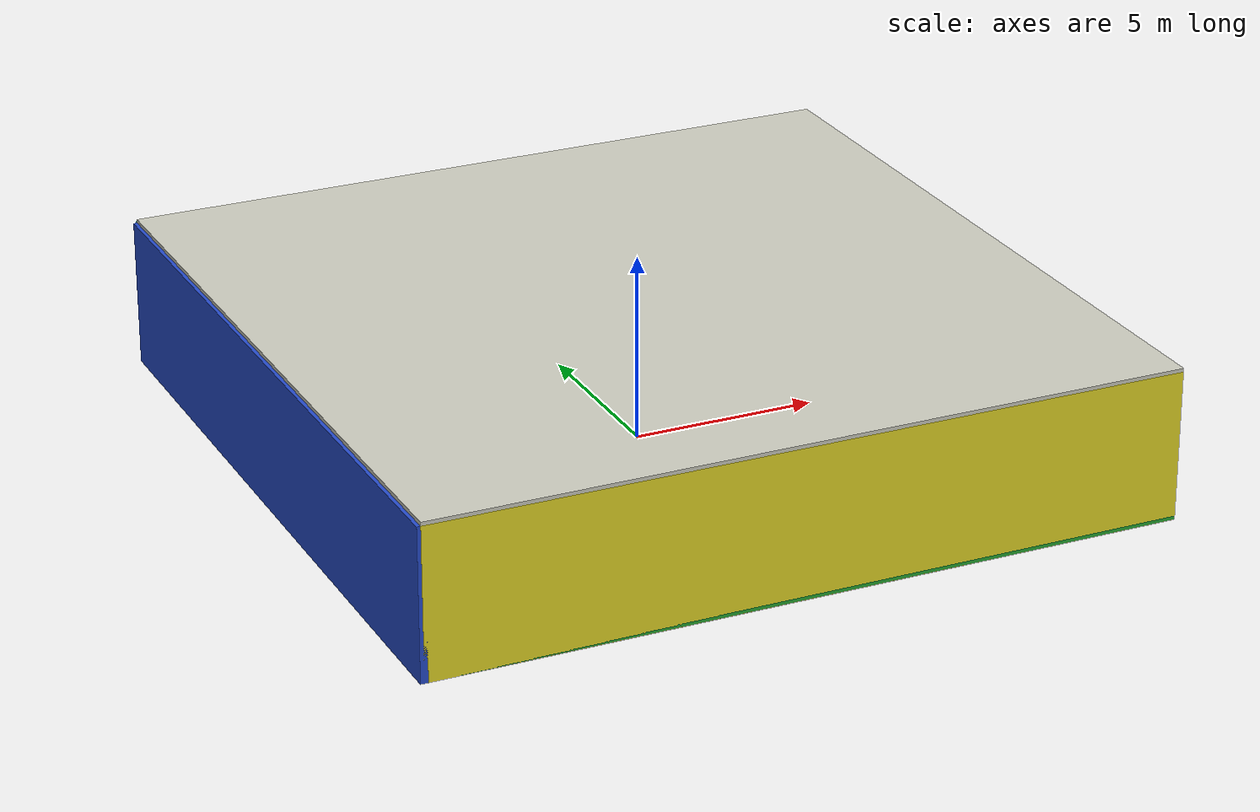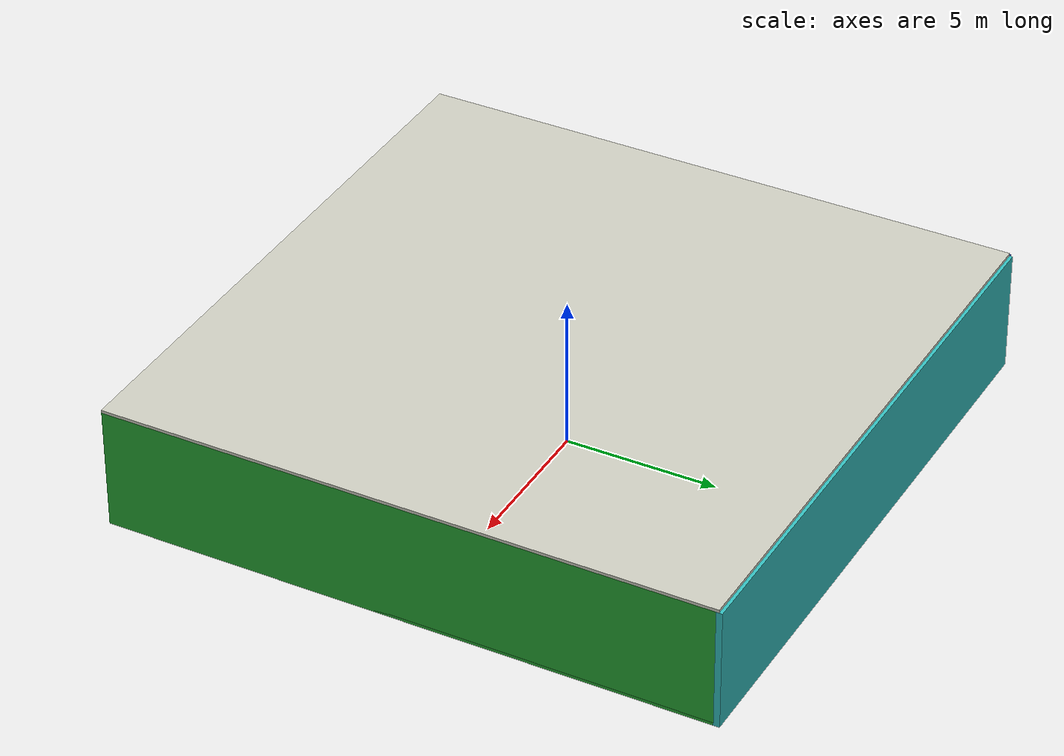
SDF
<sdf version="1.4">
 <world name="default">
  <physics type="ode">
   <max_step_size>0.001</max_step_size>
   <real_time_factor>1</real_time_factor>
   <real_time_update_rate>1000</real_time_update_rate>
   <gravity>0 0 -9.8</gravity>
  </physics>
  <scene><ambient>0.4 0.4 0.4 1</ambient><background>0.7 0.7 0.7 1</background><shadows>1</shadows></scene>
  <model name="Surrounding">
   <static>1</static>
   <link name="Ceiling">
    <collision name="Ceiling_Collision"><geometry><box><size>20 20 0.1</size></box></geometry></collision>
    <visual name="Ceiling_Visual">
     <geometry><box><size>20 20 0.1</size></box></geometry>
     <material>
      <script><uri>file://media/materials/scripts/gazebo.material</uri><name>Gazebo/PaintedWall</name></script>
     </material>
    </visual>
    <pose>0 0 4.05 0 0 0</pose>
   </link>
   <link name="Wall_South">
    <collision name="Wall_South_Collision">
     <geometry><box><size>20 0 4</size></box></geometry>
     <pose>0 0 2 0 -0 0</pose>
    </collision>
    <visual name="Wall_South_Visual">
     <pose>0 0 2 0 -0 0</pose>
     <geometry><box><size>20 0 4</size></box></geometry>
     <material>
      <script><uri>file://media/materials/scripts/gazebo.material</uri><name>Gazebo/YellowGlow</name></script>
     </material>
    </visual>
    <velocity_decay><linear>0</linear><angular>0</angular></velocity_decay>
    <pose>0 -10 0 0 -0 0</pose>
   </link>
   <link name="Wall_East">
    <collision name="Wall_21_Collision">
     <geometry><box><size>20 0 4</size></box></geometry>
     <pose>0 0 2 0 -0 0</pose>
    </collision>
    <visual name="Wall_21_Visual">
     <pose>0 0 2 0 -0 0</pose>
     <geometry><box><size>20 0 4</size></box></geometry>
     <material>
      <script><uri>file://media/materials/scripts/gazebo.material</uri><name>Gazebo/GreenGlow</name></script>
     </material>
    </visual>
    <velocity_decay><linear>0</linear><angular>0</angular></velocity_decay>
    <pose>10 0 0 0 -0 1.5708</pose>
   </link>
   <link name="Wall_North">
    <collision name="Wall_22_Collision">
     <geometry><box><size>20 0.2 4</size></box></geometry>
     <pose>0 0 2 0 -0 0</pose>
    </collision>
    <visual name="Wall_22_Visual">
     <pose>0 0 2 0 -0 0</pose>
     <geometry><box><size>20 0.2 4</size></box></geometry>
     <material>
      <script><uri>file://media/materials/scripts/gazebo.material</uri><name>Gazebo/TurquoiseGlow</name></script>
     </material>
    </visual>
    <velocity_decay><linear>0</linear><angular>0</angular></velocity_decay>
    <pose>0 10 0 0 -0 0</pose>
   </link>
   <link name="Wall_West">
    <collision name="Wall_23_Collision">
     <geometry><box><size>20 0.2 4</size></box></geometry>
     <pose>0 0 2 0 -0 0</pose>
    </collision>
    <visual name="Wall_23_Visual">
     <pose>0 0 2 0 -0 0</pose>
     <geometry><box><size>20 0.2 4</size></box></geometry>
     <material>
      <script><uri>file://media/materials/scripts/gazebo.material</uri><name>Gazebo/BlueLaser</name></script>
     </material>
    </visual>
    <velocity_decay><linear>0</linear><angular>0</angular></velocity_decay>
    <pose>-10 0 0 0 0 -1.5708</pose>
   </link>
   <link name="Ground_link">
    <collision name="collision">
     <pose>0 0 .05 0 -0 0</pose>
     <geometry><box><size>20 20 0.1</size></box></geometry>
    </collision>
    <visual name="visual">
     <pose>0 0 .05 0 -0 0</pose>
     <geometry><box><size>20 20 0.1</size></box></geometry>
     <material>
      <script><uri>file://media/materials/scripts/gazebo.material</uri><name>Gazebo/Green</name></script>
     </material>
    </visual>
   </link>
   <static>1</static>
  </model>
  <spherical_coordinates>
   <surface_model>EARTH_WGS84</surface_model>
   <latitude_deg>0</latitude_deg>
   <longitude_deg>0</longitude_deg>
   <elevation>0</elevation>
   <heading_deg>0</heading_deg>
  </spherical_coordinates>
  <light name="lightball_0" type="diffuse">
   <diffuse>0.8 0.8 0.8 1</diffuse>
   <specular>0.2 0.2 0.2 1</specular>
   <attenuation>
    <range>100</range>
    <constant>0.7</constant>
    <linear>0.01</linear>
    <quadratic>0.001</quadratic>
   </attenuation>
   <direction>-0.5 0.1 -0.9</direction>
   <pose>7.61521441349 -1.50731483434 1.31707577921 0 0 0</pose>
  </light>
  <light name="lightball_1" type="diffuse">
   <diffuse>0.8 0.8 0.8 1</diffuse>
   <specular>0.2 0.2 0.2 1</specular>
   <attenuation>
    <range>100</range>
    <constant>0.7</constant>
    <linear>0.01</linear>
    <quadratic>0.001</quadratic>
   </attenuation>
   <direction>-0.5 0.1 -0.9</direction>
   <pose>7.48524074796 9.54142749818 2.26071376715 0 0 0</pose>
  </light>
  <include>
   <uri>model://construction_cone</uri>
   <pose>-8.42135567805 -2.48919575154 0 0 0 0.106146043816</pose>
  </include>
  <include><uri>model://cabinet</uri><pose>-6.92860230114 0.318710331831 0 0 0 0.701374690365</pose></include>
  <include><uri>model://table</uri><pose>-5.53245003407 4.05307570427 0 0 0 1.24812040493</pose></include>
  <include>
   <uri>model://construction_cone</uri>
   <pose>-5.11414654649 8.57335593856 0 0 0 0.912598629759</pose>
  </include>
  <include><uri>model://table</uri><pose>-0.80526457414 -2.67962904856 0 0 0 1.61782452374</pose></include>
  <include>
   <uri>model://textured_shapes</uri>
   <pose>0.420004830101 2.33084214018 0 0 0 1.37016587741</pose>
  </include>
  <include>
   <uri>model://construction_cone</uri>
   <pose>6.79376290599 7.00008246866 0 0 0 2.61877853556</pose>
  </include>
 </world>
</sdf>

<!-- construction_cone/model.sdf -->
<sdf version="1.5">
  <model name="Construction Cone">
    <link name="link">
      <collision name="collision">
        <geometry>
          <mesh>
            <scale>10 10 10</scale>
            <uri>file://isr-testbed/construction_cone/meshes/construction_cone.dae</uri>
          </mesh>
        </geometry>
      </collision>
      <visual name="visual">
        <geometry>
          <mesh>
            <scale>10 10 10</scale>
            <uri>file://isr-testbed/construction_cone/meshes/construction_cone.dae</uri>
          </mesh>
        </geometry>
      </visual>
    </link>
  </model>
</sdf>

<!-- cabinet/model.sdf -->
<sdf version="1.5">
  <model name="cabinet">
    <static>true</static>
    <link name="cabinet_bottom_plate">
      <inertial>
        <pose>0 0 -1 0 0 0</pose>
        <inertia>
          <ixx>2.050000</ixx>
          <ixy>0</ixy>
          <ixz>0</ixz>
          <iyy>2.050000</iyy>
          <iyz>0</iyz>
          <izz>2.050000</izz>
        </inertia>
        <mass>25.000000</mass>
      </inertial>
      <collision name="cabinet_bottom_plate_geom">
        <pose>0 0 0.010000 0 0 0</pose>
        <geometry>
          <box>
            <size>0.450000 0.450000 0.020000</size>
          </box>
        </geometry>
      </collision>
      <visual name="cabinet_bottom_plate_geom_visual">
        <pose>0 0 0.010000 0 0 0</pose>
        <geometry>
          <box>
            <size>0.450000 0.450000 0.020000</size>
          </box>
        </geometry>
        <material>
          <script>
            <uri>model://media/materials/scripts/gazebo.material</uri>
            <name>Gazebo/Wood</name>
          </script>
        </material>
      </visual>
      <collision name="cabinet_bottom_plate_geom_cabinet_back_plate">
        <pose>0.235000 0 0.510000 0 0 0</pose>
        <geometry>
          <box>
            <size>0.020000 0.450000 1.020000</size>
          </box>
        </geometry>
      </collision>
      <visual name="cabinet_bottom_plate_geom_cabinet_back_plate_visual">
        <pose>0.235000 0 0.510000 0 0 0</pose>
        <geometry>
          <box>
            <size>0.020000 0.450000 1.020000</size>
          </box>
        </geometry>
        <material>
          <script>
            <uri>model://media/materials/scripts/gazebo.material</uri>
            <name>Gazebo/Wood</name>
          </script>
        </material>
      </visual>
      <collision name="cabinet_bottom_plate_geom_cabinet_left_plate">
        <pose>0 0.235000 0.510000 0 0 0</pose>
        <geometry>
          <box>
            <size>0.450000 0.020000 1.020000</size>
          </box>
        </geometry>
      </collision>
      <visual name="cabinet_bottom_plate_geom_cabinet_left_plate_visual">
        <pose>0 0.235000 0.510000 0 0 0</pose>
        <geometry>
          <box>
            <size>0.450000 0.020000 1.020000</size>
          </box>
        </geometry>
        <material>
          <script>
            <uri>model://media/materials/scripts/gazebo.material</uri>
            <name>Gazebo/Wood</name>
          </script>
        </material>
      </visual>
      <collision name="cabinet_bottom_plate_geom_cabinet_middle_plate">
        <pose>0 0 0.510000 0 0 0</pose>
        <geometry>
          <box>
            <size>0.450000 0.450000 0.020000</size>
          </box>
        </geometry>
      </collision>
      <visual name="cabinet_bottom_plate_geom_cabinet_middle_plate_visual">
        <pose>0 0 0.510000 0 0 0</pose>
        <geometry>
          <box>
            <size>0.450000 0.450000 0.020000</size>
          </box>
        </geometry>
        <material>
          <script>
            <uri>model://media/materials/scripts/gazebo.material</uri>
            <name>Gazebo/Wood</name>
          </script>
        </material>
      </visual>
      <collision name="cabinet_bottom_plate_geom_cabinet_right_plate">
        <pose>0 -0.235000 0.510000 0 0 0</pose>
        <geometry>
          <box>
            <size>0.450000 0.020000 1.020000</size>
          </box>
        </geometry>
      </collision>
      <visual name="cabinet_bottom_plate_geom_cabinet_right_plate_visual">
        <pose>0 -0.235000 0.510000 0 0 0</pose>
        <geometry>
          <box>
            <size>0.450000 0.020000 1.020000</size>
          </box>
        </geometry>
        <material>
          <script>
            <uri>model://media/materials/scripts/gazebo.material</uri>
            <name>Gazebo/Wood</name>
          </script>
        </material>
      </visual>
      <collision name="cabinet_bottom_plate_geom_cabinet_top_plate">
        <pose>0 0 1.010000 0 0 0</pose>
        <geometry>
          <box>
            <size>0.450000 0.450000 0.020000</size>
          </box>
        </geometry>
      </collision>
      <visual name="cabinet_bottom_plate_geom_cabinet_top_plate_visual">
        <pose>0 0 1.010000 0 0 0</pose>
        <geometry>
          <box>
            <size>0.450000 0.450000 0.020000</size>
          </box>
        </geometry>
        <material>
          <script>
            <uri>model://media/materials/scripts/gazebo.material</uri>
            <name>Gazebo/Wood</name>
          </script>
        </material>
      </visual>
    </link>
  </model>
</sdf>

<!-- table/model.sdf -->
<sdf version="1.5">
  <model name="table">
    <static>true</static>
    <link name="link">
      <collision name="surface">
        <pose>0 0 1.0 0 0 0</pose>
        <geometry>
          <box>
            <size>1.5 0.8 0.03</size>
          </box>
        </geometry>
        <surface>
          <friction>
            <ode>
              <mu>0.6</mu>
              <mu2>0.6</mu2>
            </ode>
          </friction>
        </surface>
      </collision>
      <visual name="visual1">
        <pose>0 0 1.0 0 0 0</pose>
        <geometry>
          <box>
            <size>1.5 0.8 0.03</size>
          </box>
        </geometry>
        <material>
          <script>
            <uri>model://media/materials/scripts/gazebo.material</uri>
            <name>Gazebo/Wood</name>
          </script>
        </material>
      </visual>
      <collision name="front_left_leg">
        <pose>0.68 0.38 0.5 0 0 0</pose>
        <geometry>
          <cylinder>
            <radius>0.02</radius>
            <length>1.0</length>
          </cylinder>
        </geometry>
      </collision>
      <visual name="front_left_leg">
        <pose>0.68 0.38 0.5 0 0 0</pose>
        <geometry>
          <cylinder>
            <radius>0.02</radius>
            <length>1.0</length>
          </cylinder>
        </geometry>
        <material>
          <script>
            <uri>model://media/materials/scripts/gazebo.material</uri>
            <name>Gazebo/Grey</name>
          </script>
        </material>
      </visual>
      <collision name="front_right_leg">
        <pose>0.68 -0.38 0.5 0 0 0</pose>
        <geometry>
          <cylinder>
            <radius>0.02</radius>
            <length>1.0</length>
          </cylinder>
        </geometry>
      </collision>
      <visual name="front_right_leg">
        <pose>0.68 -0.38 0.5 0 0 0</pose>
        <geometry>
          <cylinder>
            <radius>0.02</radius>
            <length>1.0</length>
          </cylinder>
        </geometry>
        <material>
          <script>
            <uri>model://media/materials/scripts/gazebo.material</uri>
            <name>Gazebo/Grey</name>
          </script>
        </material>
      </visual>
      <collision name="back_right_leg">
        <pose>-0.68 -0.38 0.5 0 0 0</pose>
        <geometry>
          <cylinder>
            <radius>0.02</radius>
            <length>1.0</length>
          </cylinder>
        </geometry>
      </collision>
      <visual name="back_right_leg">
        <pose>-0.68 -0.38 0.5 0 0 0</pose>
        <geometry>
          <cylinder>
            <radius>0.02</radius>
            <length>1.0</length>
          </cylinder>
        </geometry>
        <material>
          <script>
            <uri>model://media/materials/scripts/gazebo.material</uri>
            <name>Gazebo/Grey</name>
          </script>
        </material>
      </visual>
      <collision name="back_left_leg">
        <pose>-0.68 0.38 0.5 0 0 0</pose>
        <geometry>
          <cylinder>
            <radius>0.02</radius>
            <length>1.0</length>
          </cylinder>
        </geometry>
      </collision>
      <visual name="back_left_leg">
        <pose>-0.68 0.38 0.5 0 0 0</pose>
        <geometry>
          <cylinder>
            <radius>0.02</radius>
            <length>1.0</length>
          </cylinder>
        </geometry>
        <material>
          <script>
            <uri>model://media/materials/scripts/gazebo.material</uri>
            <name>Gazebo/Grey</name>
          </script>
        </material>
      </visual>
    </link>
  </model>
</sdf>

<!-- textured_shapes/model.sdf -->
<sdf version="1.6">
  <model name="textured_shapes">
    <pose>0 0 0.5 0 0 0</pose>
    <link name="box">
      <pose>0 -1.5 0 0 0 0</pose>
      <collision name="collision">
        <geometry>
          <box>
            <size>1 1 1</size>
          </box>
        </geometry>
      </collision>
      <visual name="visual">
        <geometry>
          <box>
            <size>1 1 1</size>
          </box>
        </geometry>
        <material>
          <script>
            <uri>model://../model_source/models/textured_shapes/materials/scripts</uri>
            <uri>model://../model_source/models/textured_shapes/materials/textures</uri>
            <name>TexturedShape/Squares</name>
          </script>
        </material>
      </visual>
    </link>
    <link name="sphere">
      <collision name="collision">
        <geometry>
          <sphere>
            <radius>0.5</radius>
          </sphere>
        </geometry>
      </collision>
      <visual name="visual">
        <geometry>
          <sphere>
            <radius>0.5</radius>
          </sphere>
        </geometry>
        <material>
          <script>
            <uri>model://../model_source/models/textured_shapes/materials/scripts</uri>
            <uri>model://../model_source/models/textured_shapes/materials/textures</uri>
            <name>TexturedShape/Squares</name>
          </script>
        </material>
      </visual>
    </link>
    <link name="cylinder">
      <pose>0 1.5 0 0 0 0</pose>
      <collision name="collision">
        <geometry>
          <cylinder>
            <radius>0.5</radius>
            <length>1</length>
          </cylinder>
        </geometry>
      </collision>
      <visual name="visual">
        <geometry>
          <cylinder>
            <radius>0.5</radius>
            <length>1</length>
          </cylinder>
        </geometry>
        <material>
          <script>
            <uri>model://../model_source/models/textured_shapes/materials/scripts</uri>
            <uri>model://../model_source/models/textured_shapes/materials/textures</uri>
            <name>TexturedShape/Squares</name>
          </script>
        </material>
      </visual>
    </link>
  </model>
</sdf>
